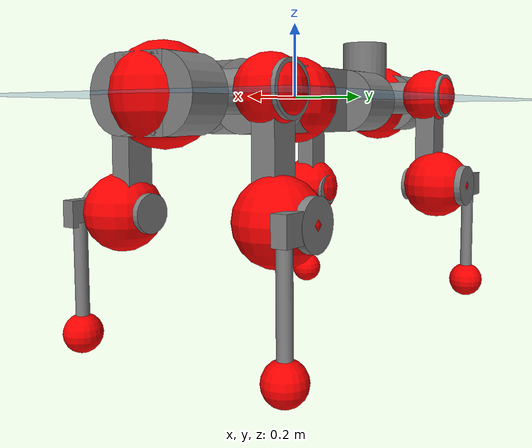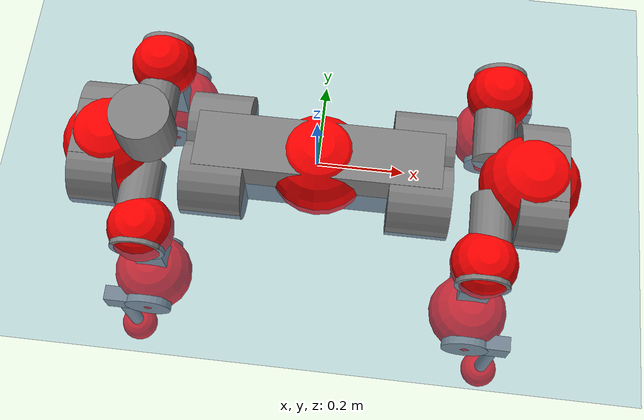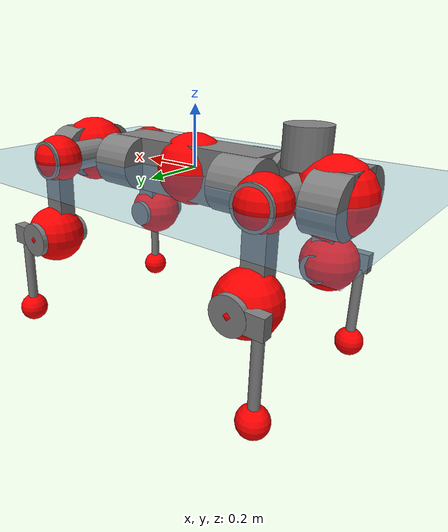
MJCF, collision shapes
<mujoco model="anymal_c">
  <compiler angle="radian" assetdir="assets" balanceinertia="true" inertiafromgeom="false"/>

  <option timestep="0.005" density="1.2" viscosity="2e-05"/>

  <size nkey="1"/>

  <visual>
    <quality shadowsize="8192"/>
    <map shadowclip="0.5"/>
  </visual>

  <default>
    <default class="/">
      <material specular="0" shininess="0.25"/>
      <geom contype="0" conaffinity="0" group="1" solref="-1000 -80"/>
      <site size="0.01 0.005 0.005" group="5"/>
      <general forcelimited="true" forcerange="-80 80" biastype="affine" gainprm="80" biasprm="0 -80 -2"/>
      <default class="anymal_c">
        <joint armature="0.01" damping="0.01" frictionloss="0.1"/>
        <default class="visual">
          <geom type="mesh" group="2"/>
          <default class="visual_zflip"/>
        </default>
        <default class="collision">
          <geom type="cylinder" group="3"/>
          <default class="foot">
            <geom size="0.03 0 0" type="sphere" condim="6" priority="1" friction="0.8 0.02 0.01" solimp="0.015 1 0.03"/>
          </default>
        </default>
      </default>
      <default class="reward_collision_sphere">
        <geom group="5" rgba="1 0 0 1"/>
      </default>
    </default>
  </default>

  <asset>
    <texture type="skybox" colorspace="auto" name="//unnamed_texture_0" builtin="gradient" rgb1="0.95 0.95 0.95" rgb2="0.95 0.95 0.95" width="100" height="600"/>
    <texture type="2d" colorspace="auto" name="texplane" builtin="checker" rgb1="0.345 0.575 0.748" rgb2="0.345 0.575 0.748" markrgb="1 1 1" width="512" height="512"/>
    <texture type="2d" colorspace="linear" name="base" file="base.png"/>
    <texture type="2d" colorspace="linear" name="top_shell" file="top_shell.png"/>
    <texture type="2d" colorspace="linear" name="bottom_shell" file="bottom_shell.png"/>
    <texture type="2d" colorspace="linear" name="remote" file="remote.png"/>
    <texture type="2d" colorspace="linear" name="hatch" file="hatch.png"/>
    <texture type="2d" colorspace="linear" name="handle" file="handle.png"/>
    <texture type="2d" colorspace="linear" name="face" file="face.png"/>
    <texture type="2d" colorspace="linear" name="battery" file="battery.png"/>
    <texture type="2d" colorspace="linear" name="lidar_cage" file="lidar_cage.png"/>
    <texture type="2d" colorspace="linear" name="depth_camera" file="depth_camera.png"/>
    <texture type="2d" colorspace="linear" name="wide_angle_camera" file="wide_angle_camera.png"/>
    <texture type="2d" colorspace="linear" name="lidar" file="lidar.png"/>
    <texture type="2d" colorspace="linear" name="drive" file="drive.png"/>
    <texture type="2d" colorspace="linear" name="hip_l" file="hip_l.png"/>
    <texture type="2d" colorspace="linear" name="shank_l" file="shank_l.png"/>
    <texture type="2d" colorspace="linear" name="foot" file="foot.png"/>
    <texture type="2d" colorspace="linear" name="thigh" file="thigh.png"/>
    <texture type="2d" colorspace="linear" name="shank_r" file="shank_r.png"/>
    <texture type="2d" colorspace="linear" name="hip_r" file="hip_r.png"/>
    <material name="MatPlane" class="/" texture="texplane" texuniform="true" texrepeat="2 2" specular="0.9" shininess="0.5"/>
    <material name="black_plastic" class="/" rgba="0.007 0.007 0.007 1"/>
    <material name="green" class="/" rgba="0.052 0.178 0.033 1"/>
    <material name="red" class="/" rgba="0.178 0.006 0.005 1"/>
    <material name="yellow" class="/" rgba="0.178 0.119 0.006 1"/>
    <material name="lwl" class="/" rgba="0.8 0.8 0.8 1"/>
    <material name="base" class="/" texture="base"/>
    <material name="top_shell" class="/" texture="top_shell"/>
    <material name="bottom_shell" class="/" texture="bottom_shell"/>
    <material name="hip_l" class="/" texture="hip_l"/>
    <material name="thigh" class="/" texture="thigh"/>
    <material name="shank_l" class="/" texture="shank_l"/>
    <material name="foot" class="/" texture="foot"/>
    <material name="hip_r" class="/" texture="hip_r"/>
    <material name="shank" class="/" texture="shank_r"/>
    <material name="hatch" class="/" texture="hatch"/>
    <material name="remote" class="/" texture="remote"/>
    <material name="handle" class="/" texture="handle"/>
    <material name="face" class="/" texture="face"/>
    <material name="depth_camera" class="/" texture="depth_camera"/>
    <material name="wide_angle_camera" class="/" texture="wide_angle_camera"/>
    <material name="battery" class="/" texture="battery"/>
    <material name="lidar_cage" class="/" texture="lidar_cage"/>
    <material name="lidar" class="/" texture="lidar"/>
    <material name="drive" class="/" texture="drive"/>
    <mesh name="base_0" class="/" file="base_0.obj"/>
    <mesh name="base_1" class="/" file="base_1.obj"/>
    <mesh name="base_2" class="/" file="base_2.obj"/>
    <mesh name="base_3" class="/" file="base_3.obj"/>
    <mesh name="base_4" class="/" file="base_4.obj"/>
    <mesh name="base_5" class="/" file="base_5.obj"/>
    <mesh name="top_shell" class="/" file="top_shell.obj"/>
    <mesh name="bottom_shell" class="/" file="bottom_shell.obj"/>
    <mesh name="remote" class="/" file="remote.obj"/>
    <mesh name="handle" class="/" file="handle.obj"/>
    <mesh name="face" class="/" file="face.obj"/>
    <mesh name="wide_angle_camera" class="/" file="wide_angle_camera.obj"/>
    <mesh name="depth_camera" class="/" file="depth_camera.obj"/>
    <mesh name="battery" class="/" file="battery.obj"/>
    <mesh name="lidar_cage" class="/" file="lidar_cage.obj"/>
    <mesh name="lidar" class="/" file="lidar.obj"/>
    <mesh name="drive" class="/" file="drive.obj"/>
    <mesh name="hip_l" class="/" file="hip_l.obj"/>
    <mesh name="thigh" class="/" file="thigh.obj"/>
    <mesh name="shank_l" class="/" file="shank_l.obj"/>
    <mesh name="foot" class="/" file="foot.obj"/>
    <mesh name="hip_r" class="/" file="hip_r.obj"/>
    <mesh name="hatch" class="/" file="hatch.obj"/>
    <mesh name="shank_r" class="/" file="shank_r.obj"/>
  </asset>

  <worldbody>
    <geom name="floor" class="/" size="100 100 0.125" type="plane" group="0" material="MatPlane"/>
    <light name="toplight_shadow" class="/" pos="0 0 5" dir="0.0990148 0.0990148 -0.990148" type="directional" ambient="0.04 0.04 0.04" diffuse="0.55 0.55 0.55" specular="0.12 0.12 0.12"/>
    <light name="toplight_fill" class="/" pos="0 0 5" dir="0.0990148 0.0990148 -0.990148" type="directional" castshadow="false" ambient="0.04 0.04 0.04" diffuse="0.3 0.3 0.3" specular="0.08 0.08 0.08"/>
    <body name="trunk" childclass="anymal_c" pos="0.00435292 0.00107836 -0.00565736" quat="0.999994 0.00156646 -0.00308824 1.42459e-05">
      <inertial pos="0.0182314 0.0123894 0.0540977" quat="0.486029 0.49958 0.51275 0.501281" mass="14.4215" diaginertia="0.961291 0.350849 0.153357"/>
      <joint name="//unnamed_joint_0" type="free" armature="0" damping="0" frictionloss="0"/>
      <geom name="//unnamed_geom_1" class="visual" material="green" mesh="base_0"/>
      <geom name="//unnamed_geom_2" class="visual" material="yellow" mesh="base_1"/>
      <geom name="//unnamed_geom_3" class="visual" material="red" mesh="base_2"/>
      <geom name="//unnamed_geom_4" class="visual" material="black_plastic" mesh="base_3"/>
      <geom name="//unnamed_geom_5" class="visual" material="lwl" mesh="base_4"/>
      <geom name="//unnamed_geom_6" class="visual" material="base" mesh="base_5"/>
      <geom name="trunk_1" class="collision" size="0.282619 0.0682183 0.0877092" type="box"/>
      <geom name="trunk_2" class="collision" size="0.0877092 0.0706546" pos="0.23615 0.062617 0" quat="0.707107 0 0.707107 0"/>
      <geom name="trunk_3" class="collision" size="0.0877092 0.0706546" pos="-0.23615 0.062617 0" quat="0.707107 0 0.707107 0"/>
      <geom name="trunk_4" class="collision" size="0.0877092 0.0706546" pos="0.23615 -0.062617 0" quat="0.707107 0 0.707107 0"/>
      <geom name="trunk_5" class="collision" size="0.0877092 0.0706546" pos="-0.23615 -0.062617 0" quat="0.707107 0 0.707107 0"/>
      <geom name="//unnamed_geom_12" class="visual" material="top_shell" mesh="top_shell"/>
      <geom name="//unnamed_geom_13" class="visual" material="bottom_shell" mesh="bottom_shell"/>
      <geom name="//unnamed_geom_14" class="visual" material="remote" mesh="remote"/>
      <geom name="//unnamed_geom_15" class="visual" material="handle" mesh="handle"/>
      <geom name="//unnamed_geom_16" class="visual" pos="0.450042 0 0" quat="1 0 0 0" material="face" mesh="face"/>
      <geom name="trunk_6" class="collision" size="0.0536001 0.0682183 0.0877092" pos="0.509758 0 0" type="box"/>
      <geom name="//unnamed_geom_18" class="collision" size="0.0877092 0.0536001" pos="0.509758 0.062617 0" quat="0.707107 0 0.707107 0"/>
      <geom name="//unnamed_geom_19" class="collision" size="0.0877092 0.0536001" pos="0.509758 -0.062617 0" quat="0.707107 0 0.707107 0"/>
      <geom name="//unnamed_geom_20" class="visual" pos="0.501229 0 -0.0264641" quat="0.965926 0 0.258819 0" material="depth_camera" mesh="depth_camera"/>
      <geom name="//unnamed_geom_21" class="visual" pos="0.556988 0 0.0141222" material="wide_angle_camera" mesh="wide_angle_camera"/>
      <geom name="//unnamed_geom_22" class="visual_zflip" pos="-0.450042 0 0" quat="0 0 0 1" material="face" mesh="face"/>
      <geom name="trunk_7" class="collision" size="0.0536001 0.0682183 0.0877092" pos="-0.509758 0 0" quat="0 0 0 1" type="box"/>
      <geom name="//unnamed_geom_24" class="collision" size="0.0877092 0.0536001" pos="-0.509758 -0.062617 0" quat="0 -0.707107 0 0.707107"/>
      <geom name="//unnamed_geom_25" class="collision" size="0.0877092 0.0536001" pos="-0.509758 0.062617 0" quat="0 -0.707107 0 0.707107"/>
      <geom name="//unnamed_geom_26" class="visual" pos="-0.501229 0 -0.0264641" quat="0 -0.258819 0 0.965926" material="depth_camera" mesh="depth_camera"/>
      <geom name="//unnamed_geom_27" class="visual_zflip" pos="-0.556988 0 0.0141222" quat="0 0 0 1" material="wide_angle_camera" mesh="wide_angle_camera"/>
      <geom name="//unnamed_geom_28" class="visual" material="battery" mesh="battery"/>
      <geom name="//unnamed_geom_29" class="visual" pos="0 0.0658805 0.0284868" quat="0.683013 -0.183013 0.183013 0.683013" material="depth_camera" mesh="depth_camera"/>
      <geom name="//unnamed_geom_30" class="visual" pos="0 -0.0658805 0.0284868" quat="0.683013 0.183013 0.183013 -0.683013" material="depth_camera" mesh="depth_camera"/>
      <geom name="//unnamed_geom_31" class="visual" pos="-0.395212 0 0.0693373" quat="1 0 0 0" material="lidar_cage" mesh="lidar_cage"/>
      <geom name="trunk_8" class="collision" size="0.0682183 0.0584728" pos="-0.395212 0 0.125939"/>
      <geom name="//unnamed_geom_33" class="visual" pos="-0.395212 -7.5125e-05 0.134146" quat="0.707107 0 0 -0.707107" material="lidar" mesh="lidar"/>
      <geom name="//unnamed_geom_34" class="visual" pos="0.325616 0.0930483 -8.42433e-10" quat="0.258819 0.965926 0 0" material="drive" mesh="drive"/>
      <geom name="//unnamed_geom_35" class="visual" pos="0.325616 -0.0930483 8.42433e-10" quat="0.258819 -0.965926 0 0" material="drive" mesh="drive"/>
      <geom name="//unnamed_geom_36" class="visual" pos="-0.325616 0.0930483 8.42433e-10" quat="0 0 0.965926 -0.258819" material="drive" mesh="drive"/>
      <geom name="//unnamed_geom_37" class="visual" pos="-0.325616 -0.0930483 -8.42433e-10" quat="0 0 -0.965926 -0.258819" material="drive" mesh="drive"/>
      <geom name="//unnamed_geom_38" class="visual" pos="0.125947 0 0.0688656" quat="1 0 0 0" material="hatch" mesh="hatch"/>
      <geom name="//unnamed_geom_39" class="reward_collision_sphere" size="0.116946"/>
      <geom name="//unnamed_geom_40" class="reward_collision_sphere" size="0.116946" pos="0.488586 0 0"/>
      <geom name="//unnamed_geom_41" class="reward_collision_sphere" size="0.116946" pos="-0.488586 0 0"/>
      <site name="imu" pos="0.202325 0.00456984 0.111188" size="0.00974547"/>
      <camera name="track" pos="0 -1.78906 0" quat="0.707107 0.707107 0 0" mode="trackcom"/>
      <camera name="ego_camera" pos="0.488586 0 -0.0377346" quat="-0.5 -0.5 0.5 0.5"/>
      <body name="LF_HIP" pos="0.336522 0.104449 0.00739054" quat="0.258002 0.966144 -0.000643494 0.000396001">
        <inertial pos="0.0608591 -0.00290388 -0.00646743" quat="-0.123307 0.710818 -0.133775 0.679439" mass="2.77606" diaginertia="0.0106058 0.003847 0.00297516"/>
        <joint name="LF_HAA" pos="0 0 0" axis="0.999999 0.000982102 -0.000696413" stiffness="0.0475909" range="-0.732382 0.35817" armature="0.00961683" damping="0" frictionloss="0.144168"/>
        <geom name="//unnamed_geom_42" class="visual" pos="0 -4.95565e-05 8.13962e-06" quat="0.258819 -0.965926 0 0" material="hip_l" mesh="hip_l"/>
        <geom name="//unnamed_geom_43" class="visual" pos="0.0650363 -0.0763049 -0.0444159" quat="0.183013 -0.683013 0.683013 0.183013" material="drive" mesh="drive"/>
        <geom name="//unnamed_geom_44" class="collision" size="0.0487273 0.0682183" pos="0.0650363 -0.0106984 -0.00651393" quat="-0.353553 -0.612372 0.612372 -0.353553"/>
        <body name="LF_THIGH" pos="0.07334 -0.0792631 -0.0467932" quat="0.183119 -0.680522 0.68386 0.188924">
          <inertial pos="0.0331975 -0.000150434 -0.239868" quat="0.985482 -0.0145949 -0.126422 0.112384" mass="3.25532" diaginertia="0.0458677 0.0206587 0.00298296"/>
          <joint name="LF_HFE" pos="0 0 0" axis="0.999791 0.019168 0.00705581" stiffness="0.0144948" range="-3.39034 2.95051" armature="0.0117978" damping="0" frictionloss="0.138183"/>
          <geom name="//unnamed_geom_45" class="visual" pos="0.00380452 5.99503e-06 0" quat="0.707107 0 0 -0.707107" material="thigh" mesh="thigh"/>
          <geom name="//unnamed_geom_46" class="collision" size="0.0633455 0.0389819" pos="0.0434299 0 0" quat="0.5 0.5 -0.5 -0.5"/>
          <geom name="//unnamed_geom_47" class="collision" size="0.0365455 0.0292364 0.137717" pos="0.0325724 0 -0.133311" quat="0.707107 0 0 -0.707107" type="box"/>
          <geom name="//unnamed_geom_48" class="visual" pos="0.1089 0 -0.268859" quat="1 0 0 0" material="drive" mesh="drive"/>
          <geom name="//unnamed_geom_49" class="collision" size="0.0487273 0.0682183" pos="0.0328981 0 -0.268859" quat="0.707107 0 0.707107 0"/>
          <geom name="//unnamed_geom_50" class="reward_collision_sphere" size="0.0779637" pos="0.0271437 0 0"/>
          <body name="LF_SHANK" pos="0.108342 -0.0128756 -0.269134" quat="0.999998 0.000324974 -0.000953298 0.00169291">
            <inertial pos="0.00530326 -0.0583097 -0.0688025" quat="0.992919 -0.115848 -0.00195936 -0.0262256" mass="0.57113" diaginertia="0.0182693 0.00538053 0.000829204"/>
            <joint name="LF_KFE" pos="0 0 0" axis="0.999969 0.00189479 0.00757992" stiffness="0.0607818" range="-3.3282 3.14825" armature="0.00733426" damping="0.0032049" frictionloss="0.0994231"/>
            <geom name="//unnamed_geom_51" class="visual" pos="0.00124057 0.00661478 0" quat="0.707107 0 0 -0.707107" material="shank_l" mesh="shank_l"/>
            <geom name="LF_kfe_act" class="collision" size="0.0584728 0.0194909" pos="0.0217149 0 0" quat="0.5 0.5 -0.5 -0.5"/>
            <geom name="//unnamed_geom_53" class="collision" size="0.0560355 0.0328909 0.0185164" pos="0.0217149 -0.0514345 0" quat="0.5 0.5 -0.5 -0.5" type="box"/>
            <geom name="//unnamed_geom_54" class="visual" pos="0.0141687 -0.0765421 -0.318829" quat="0.382683 0 0 -0.92388" material="foot" mesh="foot"/>
            <geom name="LF_calf" class="collision" size="0.0170546 0.137657" pos="0.014169 -0.0786737 -0.159414" quat="0.707107 0 0 -0.707107"/>
            <geom name="LF_foot" class="foot" size="0.0303322" pos="0.014169 -0.0786737 -0.297603" quat="0.707107 0 0 -0.707107"/>
            <geom name="//unnamed_geom_57" class="reward_collision_sphere" size="0.0974547" pos="-0.0542874 0 0"/>
            <geom name="//unnamed_geom_58" class="reward_collision_sphere" size="0.0487273" pos="0.014169 -0.0786737 -0.297603"/>
            <site name="LF_foot" class="foot" pos="0.014169 -0.0786737 -0.297603" quat="0.707107 0 0 -0.707107" size="0.00974547"/>
          </body>
        </body>
      </body>
      <body name="RF_HIP" pos="0.339523 -0.0954342 0.00366927" quat="0.258647 -0.965972 0.000495864 -0.000651022">
        <inertial pos="0.0707576 0.0294483 0.00159843" quat="0.115559 0.679162 0.0582667 0.722489" mass="2.51939" diaginertia="0.00972396 0.00226192 0.00268685"/>
        <joint name="RF_HAA" pos="0 0 0" axis="0.998393 0.0106323 -0.0556669" range="-0.547045 0.697049" armature="0.00935859" damping="0.0559801" frictionloss="0.068496"/>
        <geom name="//unnamed_geom_59" class="visual" pos="0 4.95562e-05 8.1396e-06" quat="0.258819 0.965926 0 0" material="hip_r" mesh="hip_r"/>
        <geom name="//unnamed_geom_60" class="visual" pos="0.0650363 0.0763049 -0.0444159" quat="0.183013 0.683013 0.683013 -0.183013" material="drive" mesh="drive"/>
        <geom name="//unnamed_geom_61" class="collision" size="0.0487273 0.0682183" pos="0.0650363 0.0106984 -0.00651393" quat="-0.353553 0.612372 0.612372 0.353553"/>
        <body name="RF_THIGH" pos="0.0570818 0.0728185 -0.0276527" quat="0.180457 0.679513 0.686731 -0.184658">
          <inertial pos="0.0198095 0.00505845 -0.223423" quat="0.990369 -0.0345549 -0.109852 0.0768672" mass="2.54676" diaginertia="0.0529321 0.0204505 0.00269962"/>
          <joint name="RF_HFE" pos="0 0 0" axis="1 -0.000434363 -0.00056614" stiffness="0.0134519" range="-3.253 3.20753" armature="0.0138373" damping="0.0074151" frictionloss="0.0654211"/>
          <geom name="//unnamed_geom_62" class="visual" pos="0.00380452 5.99503e-06 0" quat="0.707107 0 0 -0.707107" material="thigh" mesh="thigh"/>
          <geom name="//unnamed_geom_63" class="collision" size="0.0633455 0.0389819" pos="0.0434299 0 0" quat="0.5 0.5 0.5 0.5"/>
          <geom name="//unnamed_geom_64" class="collision" size="0.0365455 0.0292364 0.137717" pos="0.0325724 0 -0.133311" quat="0.707107 0 0 0.707107" type="box"/>
          <geom name="//unnamed_geom_65" class="visual" pos="0.1089 0 -0.268859" quat="1 0 0 0" material="drive" mesh="drive"/>
          <geom name="//unnamed_geom_66" class="collision" size="0.0487273 0.0682183" pos="0.0328981 0 -0.268859" quat="0.707107 0 0.707107 0"/>
          <geom name="//unnamed_geom_67" class="reward_collision_sphere" size="0.0779637" pos="0.0271437 0 0"/>
          <body name="RF_SHANK" pos="0.117536 0.00109692 -0.271047" quat="0.999991 -0.00387151 -0.000133966 -0.00160897">
            <inertial pos="0.0168414 0.0544886 -0.075347" quat="0.981908 0.18445 -0.0170787 0.0392726" mass="0.418762" diaginertia="0.0121365 0.004958 0.00072845"/>
            <joint name="RF_KFE" pos="0 0 0" axis="0.999873 0.0139858 0.00769655" stiffness="0.0671039" range="-2.86275 3.3148" armature="0.00367506" damping="0" frictionloss="0.0634642"/>
            <geom name="//unnamed_geom_68" class="visual" pos="0.00124056 -0.00661477 0" quat="0.707107 0 0 0.707107" material="shank" mesh="shank_r"/>
            <geom name="RF_kfe_act" class="collision" size="0.0584728 0.0194909" pos="0.0217149 0 0" quat="0.5 0.5 0.5 0.5"/>
            <geom name="//unnamed_geom_70" class="collision" size="0.0560355 0.0328909 0.0185164" pos="0.0217149 0.0514345 0" quat="0.5 0.5 0.5 0.5" type="box"/>
            <geom name="//unnamed_geom_71" class="visual" pos="0.0141693 0.0765421 -0.318829" quat="0.382683 0 0 0.92388" material="foot" mesh="foot"/>
            <geom name="RF_calf" class="collision" size="0.0170546 0.137657" pos="0.014169 0.0786737 -0.159414" quat="0.707107 0 0 0.707107"/>
            <geom name="RF_foot" class="foot" size="0.0411236" pos="0.014169 0.0786737 -0.297603" quat="0.707107 0 0 0.707107"/>
            <geom name="//unnamed_geom_74" class="reward_collision_sphere" size="0.0974547" pos="-0.0542874 0 0"/>
            <geom name="//unnamed_geom_75" class="reward_collision_sphere" size="0.0487273" pos="0.014169 0.0786737 -0.297603"/>
            <site name="RF_foot" class="foot" pos="0.014169 0.0786737 -0.297603" quat="0.707107 0 0 0.707107" size="0.00974547"/>
          </body>
        </body>
      </body>
      <body name="LH_HIP" pos="-0.338284 0.102999 0.0121761" quat="1.69007e-05 0.0001849 0.965953 -0.258716">
        <inertial pos="0.0608235 0.0038524 0.00646649" quat="0.136193 0.717486 0.106276 0.674812" mass="2.10659" diaginertia="0.00585746 0.00243637 0.00223341"/>
        <joint name="LH_HAA" pos="0 0 0" axis="0.998398 0.0548838 -0.0137836" stiffness="0.0329813" range="-0.502828 0.606118" armature="0.00999919" damping="0.0724659" frictionloss="0.0941959"/>
        <geom name="//unnamed_geom_76" class="visual" pos="0 4.95562e-05 8.1396e-06" quat="-0.258819 -0.965926 0 0" material="hip_r" mesh="hip_r"/>
        <geom name="//unnamed_geom_77" class="visual" pos="0.0650363 0.0763049 -0.0444159" quat="0.183013 0.683013 0.683013 -0.183013" material="drive" mesh="drive"/>
        <geom name="//unnamed_geom_78" class="collision" size="0.0487273 0.0682183" pos="0.0650363 0.0106984 -0.00651393" quat="-0.353553 0.612372 0.612372 0.353553"/>
        <body name="LH_THIGH" pos="0.0637225 0.0715671 -0.0464668" quat="0.181681 0.68508 0.681518 -0.182182">
          <inertial pos="0.048953 -0.00548413 -0.21747" quat="0.992804 -0.00791937 -0.0809178 0.087922" mass="3.45538" diaginertia="0.0609743 0.0168605 0.00325621"/>
          <joint name="LH_HFE" pos="0 0 0" axis="0.999997 -0.000454086 -0.00248968" range="-2.98656 3.32946" armature="0.00800445" damping="0.0609126" frictionloss="0.0922269"/>
          <geom name="//unnamed_geom_79" class="visual" pos="0.00380452 5.99503e-06 0" quat="0.707107 0 0 -0.707107" material="thigh" mesh="thigh"/>
          <geom name="//unnamed_geom_80" class="collision" size="0.0633455 0.0389819" pos="0.0434299 0 0" quat="0.5 0.5 -0.5 -0.5"/>
          <geom name="//unnamed_geom_81" class="collision" size="0.0365455 0.0292364 0.137717" pos="0.0325724 0 -0.133311" quat="0.707107 0 0 -0.707107" type="box"/>
          <geom name="//unnamed_geom_82" class="visual" pos="0.1089 0 -0.268859" quat="1 0 0 0" material="drive" mesh="drive"/>
          <geom name="//unnamed_geom_83" class="collision" size="0.0487273 0.0682183" pos="0.0328981 0 -0.268859" quat="0.707107 0 0.707107 0"/>
          <geom name="//unnamed_geom_84" class="reward_collision_sphere" size="0.0779637" pos="0.0271437 0 0"/>
          <body name="LH_SHANK" pos="0.11522 -0.00605184 -0.263656" quat="1 -0.000225002 -0.000510547 0.000522352">
            <inertial pos="-0.00177114 0.0421631 -0.0707543" quat="0.989227 0.13199 -0.0312773 0.0550485" mass="0.432424" diaginertia="0.0138259 0.00359877 0.000629884"/>
            <joint name="LH_KFE" pos="0 0 0" axis="0.999982 0.00400632 -0.00435894" range="-3.3851 3.33762" armature="0.00315806" damping="0" frictionloss="0.154621"/>
            <geom name="//unnamed_geom_85" class="visual" pos="0.00124056 -0.00661477 0" quat="-0.707107 0 0 -0.707107" material="shank" mesh="shank_r"/>
            <geom name="LH_kfe_act" class="collision" size="0.0584728 0.0194909" pos="0.0217149 0 0" quat="0.5 0.5 -0.5 -0.5"/>
            <geom name="//unnamed_geom_87" class="collision" size="0.0560355 0.0328909 0.0185164" pos="0.0217149 0.0514345 0" quat="0.5 0.5 -0.5 -0.5" type="box"/>
            <geom name="//unnamed_geom_88" class="visual" pos="0.0141693 0.0765421 -0.318829" quat="-0.382683 0 0 -0.92388" material="foot" mesh="foot"/>
            <geom name="LH_calf" class="collision" size="0.0170546 0.137657" pos="0.014169 0.0786737 -0.159414" quat="0.707107 0 0 -0.707107"/>
            <geom name="LH_foot" class="foot" size="0.0224582" pos="0.014169 0.0786737 -0.297603" quat="0.707107 0 0 -0.707107"/>
            <geom name="//unnamed_geom_91" class="reward_collision_sphere" size="0.0974547" pos="-0.0542874 0 0"/>
            <geom name="//unnamed_geom_92" class="reward_collision_sphere" size="0.0487273" pos="0.014169 0.0786737 -0.297603"/>
            <site name="LH_foot" class="foot" pos="0.014169 0.0786737 -0.297603" quat="0.707107 0 0 -0.707107" size="0.00974547"/>
          </body>
        </body>
      </body>
      <body name="RH_HIP" pos="-0.341153 -0.0937327 -0.00650601" quat="0.000378159 -0.000156284 -0.965867 -0.259039">
        <inertial pos="0.0702033 -0.0217222 0.00633915" quat="-0.137316 0.688847 -0.211139 0.679746" mass="2.61243" diaginertia="0.0106561 0.00336892 0.0028861"/>
        <joint name="RH_HAA" pos="0 0 0" axis="0.997783 0.0526216 -0.0407361" range="-0.463458 0.331353" armature="0.0130689" damping="0.0488105" frictionloss="0.0939731"/>
        <geom name="//unnamed_geom_93" class="visual" pos="0 -4.95565e-05 8.13962e-06" quat="-0.258819 0.965926 0 0" material="hip_l" mesh="hip_l"/>
        <geom name="//unnamed_geom_94" class="visual" pos="0.0650363 -0.0763049 -0.0444159" quat="-0.183013 0.683013 -0.683013 -0.183013" material="drive" mesh="drive"/>
        <geom name="//unnamed_geom_95" class="collision" size="0.0487273 0.0682183" pos="0.0650363 -0.0106984 -0.00651393" quat="0.353553 0.612372 -0.612372 0.353553"/>
        <body name="RH_THIGH" pos="0.0506362 -0.0705819 -0.0267681" quat="-0.180164 0.683956 -0.684149 -0.178004">
          <inertial pos="0.0332736 -0.00855222 -0.235814" quat="0.993523 -0.000881516 -0.077547 0.0830563" mass="3.58825" diaginertia="0.0576822 0.0193974 0.00358022"/>
          <joint name="RH_HFE" pos="0 0 0" axis="0.999884 -0.000392827 -0.0152092" stiffness="0.00815687" range="-3.3138 3.24209" armature="0.0112118" damping="0" frictionloss="0.0929265"/>
          <geom name="//unnamed_geom_96" class="visual" pos="0.00380452 5.99503e-06 0" quat="0.707107 0 0 -0.707107" material="thigh" mesh="thigh"/>
          <geom name="//unnamed_geom_97" class="collision" size="0.0633455 0.0389819" pos="0.0434299 0 0" quat="0.5 0.5 0.5 0.5"/>
          <geom name="//unnamed_geom_98" class="collision" size="0.0365455 0.0292364 0.137717" pos="0.0325724 0 -0.133311" quat="0.707107 0 0 0.707107" type="box"/>
          <geom name="//unnamed_geom_99" class="visual" pos="0.1089 0 -0.268859" quat="1 0 0 0" material="drive" mesh="drive"/>
          <geom name="//unnamed_geom_100" class="collision" size="0.0487273 0.0682183" pos="0.0328981 0 -0.268859" quat="0.707107 0 0.707107 0"/>
          <geom name="//unnamed_geom_101" class="reward_collision_sphere" size="0.0779637" pos="0.0271437 0 0"/>
          <body name="RH_SHANK" pos="0.104887 -0.0113656 -0.263815" quat="0.999977 -0.00441132 0.00486973 -0.00170002">
            <inertial pos="-0.00557839 -0.0478846 -0.0807295" quat="0.994051 -0.0841211 -0.0134871 -0.0678536" mass="0.517617" diaginertia="0.016747 0.00523415 0.0009264"/>
            <joint name="RH_KFE" pos="0 0 0" axis="0.999962 -0.00740761 -0.00467401" range="-3.09038 2.87878" armature="0.0105804" damping="0" frictionloss="0.0638592"/>
            <geom name="//unnamed_geom_102" class="visual" pos="0.00124057 0.00661478 0" quat="0.707107 0 0 -0.707107" material="shank_l" mesh="shank_l"/>
            <geom name="RH_kfe_act" class="collision" size="0.0584728 0.0194909" pos="0.0217149 0 0" quat="0.5 0.5 0.5 0.5"/>
            <geom name="//unnamed_geom_104" class="collision" size="0.0560355 0.0328909 0.0185164" pos="0.0217149 -0.0514345 0" quat="0.5 0.5 0.5 0.5" type="box"/>
            <geom name="//unnamed_geom_105" class="visual" pos="0.0141687 -0.0765421 -0.318829" quat="0.382683 0 0 -0.92388" material="foot" mesh="foot"/>
            <geom name="RH_calf" class="collision" size="0.0170546 0.137657" pos="0.014169 -0.0786737 -0.159414" quat="0.707107 0 0 0.707107"/>
            <geom name="RH_foot" class="foot" size="0.039888" pos="0.014169 -0.0786737 -0.297603" quat="0.707107 0 0 0.707107"/>
            <geom name="//unnamed_geom_108" class="reward_collision_sphere" size="0.0974547" pos="-0.0542874 0 0"/>
            <geom name="//unnamed_geom_109" class="reward_collision_sphere" size="0.0487273" pos="0.014169 -0.0786737 -0.297603"/>
            <site name="RH_foot" class="foot" pos="0.014169 -0.0786737 -0.297603" quat="0.707107 0 0 0.707107" size="0.00974547"/>
          </body>
        </body>
      </body>
    </body>
  </worldbody>

  <contact>
    <pair class="/" geom1="floor" geom2="LF_foot" name="//unnamed_contact_0"/>
    <pair class="/" geom1="floor" geom2="RF_foot" name="//unnamed_contact_1"/>
    <pair class="/" geom1="floor" geom2="LH_foot" name="//unnamed_contact_2"/>
    <pair class="/" geom1="floor" geom2="RH_foot" name="//unnamed_contact_3"/>
  </contact>

  <actuator>
    <general name="LF_HAA" class="/" joint="LF_HAA" forcerange="-110.224 110.224" gainprm="94.3324" biasprm="0 -94.3324 -2.35149"/>
    <general name="LF_HFE" class="/" joint="LF_HFE" forcerange="-119.252 119.252" gainprm="94.3324" biasprm="0 -94.3324 -2.35149"/>
    <general name="LF_KFE" class="/" joint="LF_KFE" forcerange="-94.0692 94.0692" gainprm="94.3324" biasprm="0 -94.3324 -2.35149"/>
    <general name="RF_HAA" class="/" joint="RF_HAA" forcerange="-78.4433 78.4433" gainprm="94.3324" biasprm="0 -94.3324 -2.35149"/>
    <general name="RF_HFE" class="/" joint="RF_HFE" forcerange="-48.5327 48.5327" gainprm="94.3324" biasprm="0 -94.3324 -2.35149"/>
    <general name="RF_KFE" class="/" joint="RF_KFE" forcerange="-87.8836 87.8836" gainprm="94.3324" biasprm="0 -94.3324 -2.35149"/>
    <general name="LH_HAA" class="/" joint="LH_HAA" forcerange="-76.9839 76.9839" gainprm="94.3324" biasprm="0 -94.3324 -2.35149"/>
    <general name="LH_HFE" class="/" joint="LH_HFE" forcerange="-108.579 108.579" gainprm="94.3324" biasprm="0 -94.3324 -2.35149"/>
    <general name="LH_KFE" class="/" joint="LH_KFE" forcerange="-61.036 61.036" gainprm="94.3324" biasprm="0 -94.3324 -2.35149"/>
    <general name="RH_HAA" class="/" joint="RH_HAA" forcerange="-84.9257 84.9257" gainprm="94.3324" biasprm="0 -94.3324 -2.35149"/>
    <general name="RH_HFE" class="/" joint="RH_HFE" forcerange="-42.0661 42.0661" gainprm="94.3324" biasprm="0 -94.3324 -2.35149"/>
    <general name="RH_KFE" class="/" joint="RH_KFE" forcerange="-67.2202 67.2202" gainprm="94.3324" biasprm="0 -94.3324 -2.35149"/>
  </actuator>

  <sensor>
    <gyro site="imu" name="imu_angular_velocity"/>
    <velocimeter site="imu" name="imu_linear_velocity"/>
    <framelinvel objtype="site" objname="LF_foot" name="LF_foot_global_linear_velocity"/>
    <framelinvel objtype="site" objname="RF_foot" name="RF_foot_global_linear_velocity"/>
    <framelinvel objtype="site" objname="LH_foot" name="LH_foot_global_linear_velocity"/>
    <framelinvel objtype="site" objname="RH_foot" name="RH_foot_global_linear_velocity"/>
  </sensor>

  <keyframe>
    <key name="home" qpos="0 0 0.55 1 0 0 0 0 0.4 -0.8 0 -0.4 0.8 0 -0.4 0.8 0 0.4 -0.8"/>
  </keyframe>
</mujoco>
